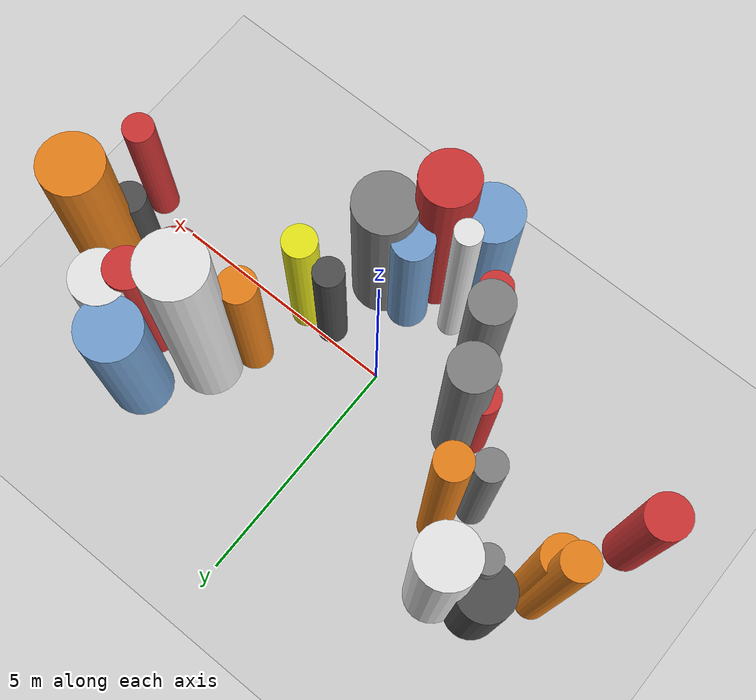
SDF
<?xml version='1.0'?>
<sdf version='1.6'>
  <world name='routeA_rl_v1__dense_recovery__rl_val__s_turn_multi_obstacle__000023'>
    <!-- Sun light -->
    <light name='sun' type='directional'>
      <cast_shadows>1</cast_shadows>
      <pose>0 0 10 0 0 0</pose>
      <diffuse>0.8 0.8 0.8 1</diffuse>
      <specular>0.2 0.2 0.2 1</specular>
      <attenuation>
        <range>1000</range>
        <constant>0.9</constant>
        <linear>0.01</linear>
        <quadratic>0.001</quadratic>
      </attenuation>
      <direction>-0.5 0.1 -0.9</direction>
    </light>

    <!-- Ground plane -->
    <model name='ground_plane'>
      <static>1</static>
      <link name='link'>
        <collision name='collision'>
          <geometry>
            <plane>
              <normal>0 0 1</normal>
              <size>100 100</size>
            </plane>
          </geometry>
          <surface>
            <contact>
              <collide_bitmask>65535</collide_bitmask>
              <ode/>
            </contact>
            <friction>
              <ode>
                <mu>100</mu>
                <mu2>50</mu2>
              </ode>
              <torsional><ode/></torsional>
            </friction>
            <bounce/>
          </surface>
          <max_contacts>10</max_contacts>
        </collision>
        <visual name='visual'>
          <cast_shadows>0</cast_shadows>
          <geometry>
            <plane>
              <normal>0 0 1</normal>
              <size>100 100</size>
            </plane>
          </geometry>
          <material>
            <script>
              <uri>file://media/materials/scripts/gazebo.material</uri>
              <n>Gazebo/Grey</n>
            </script>
          </material>
        </visual>
      </link>
    </model>

    <!-- Environment -->
    <magnetic_field>6e-06 2.3e-05 -4.2e-05</magnetic_field>
    <atmosphere type='adiabatic'/>
    <physics name='default_physics' default='0' type='ode'>
      <gravity>0 0 -9.8</gravity>
      <max_step_size>0.004</max_step_size>
      <real_time_factor>1</real_time_factor>
      <real_time_update_rate>250</real_time_update_rate>
    </physics>
    <scene>
      <ambient>0.4 0.4 0.4 1</ambient>
      <background>0.7 0.7 0.7 1</background>
      <shadows>1</shadows>
    </scene>
    <wind/>
    <spherical_coordinates>
      <surface_model>EARTH_WGS84</surface_model>
      <latitude_deg>0</latitude_deg>
      <longitude_deg>0</longitude_deg>
      <elevation>0</elevation>
      <heading_deg>0</heading_deg>
    </spherical_coordinates>

    <!-- ============ OBSTACLES (28) ============ -->
    <model name='s_turn_obs_0'>
      <static>1</static>
      <link name='link'>
        <visual name='visual'>
          <geometry>
            <cylinder>
              <radius>0.4320</radius>
              <length>3.6692</length>
            </cylinder>
          </geometry>
          <material>
            <script>
              <n>Gazebo/Red</n>
              <uri>file://media/materials/scripts/gazebo.material</uri>
            </script>
            <ambient>0.8 0.2 0.2 1</ambient>
          </material>
        </visual>
        <collision name='collision'>
          <geometry>
            <cylinder>
              <radius>0.4320</radius>
              <length>3.6692</length>
            </cylinder>
          </geometry>
          <max_contacts>10</max_contacts>
          <surface>
            <contact><ode/></contact>
            <bounce/>
            <friction>
              <ode><mu>1</mu><mu2>1</mu2></ode>
              <torsional><ode/></torsional>
            </friction>
          </surface>
        </collision>
      </link>
      <pose>-6.0000 -0.3251 1.8346 0 0 0.0000</pose>
    </model>

    <model name='s_turn_obs_1'>
      <static>1</static>
      <link name='link'>
        <visual name='visual'>
          <geometry>
            <cylinder>
              <radius>0.3243</radius>
              <length>5.7003</length>
            </cylinder>
          </geometry>
          <material>
            <script>
              <n>Gazebo/Orange</n>
              <uri>file://media/materials/scripts/gazebo.material</uri>
            </script>
            <ambient>0.9 0.5 0.1 1</ambient>
          </material>
        </visual>
        <collision name='collision'>
          <geometry>
            <cylinder>
              <radius>0.3243</radius>
              <length>5.7003</length>
            </cylinder>
          </geometry>
          <max_contacts>10</max_contacts>
          <surface>
            <contact><ode/></contact>
            <bounce/>
            <friction>
              <ode><mu>1</mu><mu2>1</mu2></ode>
              <torsional><ode/></torsional>
            </friction>
          </surface>
        </collision>
      </link>
      <pose>-5.2000 1.6608 2.8502 0 0 0.0000</pose>
    </model>

    <model name='s_turn_obs_2'>
      <static>1</static>
      <link name='link'>
        <visual name='visual'>
          <geometry>
            <cylinder>
              <radius>0.5444</radius>
              <length>3.3129</length>
            </cylinder>
          </geometry>
          <material>
            <script>
              <n>Gazebo/DarkGrey</n>
              <uri>file://media/materials/scripts/gazebo.material</uri>
            </script>
            <ambient>0.3 0.3 0.3 1</ambient>
          </material>
        </visual>
        <collision name='collision'>
          <geometry>
            <cylinder>
              <radius>0.5444</radius>
              <length>3.3129</length>
            </cylinder>
          </geometry>
          <max_contacts>10</max_contacts>
          <surface>
            <contact><ode/></contact>
            <bounce/>
            <friction>
              <ode><mu>1</mu><mu2>1</mu2></ode>
              <torsional><ode/></torsional>
            </friction>
          </surface>
        </collision>
      </link>
      <pose>-4.4000 2.5380 1.6565 0 0 0.0000</pose>
    </model>

    <model name='s_turn_obs_3'>
      <static>1</static>
      <link name='link'>
        <visual name='visual'>
          <geometry>
            <cylinder>
              <radius>0.5664</radius>
              <length>5.1203</length>
            </cylinder>
          </geometry>
          <material>
            <script>
              <n>Gazebo/White</n>
              <uri>file://media/materials/scripts/gazebo.material</uri>
            </script>
            <ambient>0.9 0.9 0.9 1</ambient>
          </material>
        </visual>
        <collision name='collision'>
          <geometry>
            <cylinder>
              <radius>0.5664</radius>
              <length>5.1203</length>
            </cylinder>
          </geometry>
          <max_contacts>10</max_contacts>
          <surface>
            <contact><ode/></contact>
            <bounce/>
            <friction>
              <ode><mu>1</mu><mu2>1</mu2></ode>
              <torsional><ode/></torsional>
            </friction>
          </surface>
        </collision>
      </link>
      <pose>-3.6000 2.7524 2.5602 0 0 0.0000</pose>
    </model>

    <model name='s_turn_obs_4'>
      <static>1</static>
      <link name='link'>
        <visual name='visual'>
          <geometry>
            <cylinder>
              <radius>0.3308</radius>
              <length>5.7313</length>
            </cylinder>
          </geometry>
          <material>
            <script>
              <n>Gazebo/Orange</n>
              <uri>file://media/materials/scripts/gazebo.material</uri>
            </script>
            <ambient>0.9 0.5 0.1 1</ambient>
          </material>
        </visual>
        <collision name='collision'>
          <geometry>
            <cylinder>
              <radius>0.3308</radius>
              <length>5.7313</length>
            </cylinder>
          </geometry>
          <max_contacts>10</max_contacts>
          <surface>
            <contact><ode/></contact>
            <bounce/>
            <friction>
              <ode><mu>1</mu><mu2>1</mu2></ode>
              <torsional><ode/></torsional>
            </friction>
          </surface>
        </collision>
      </link>
      <pose>-2.8000 1.6633 2.8657 0 0 0.0000</pose>
    </model>

    <model name='s_turn_obs_5'>
      <static>1</static>
      <link name='link'>
        <visual name='visual'>
          <geometry>
            <cylinder>
              <radius>0.4600</radius>
              <length>4.7182</length>
            </cylinder>
          </geometry>
          <material>
            <script>
              <n>Gazebo/Grey</n>
              <uri>file://media/materials/scripts/gazebo.material</uri>
            </script>
            <ambient>0.5 0.5 0.5 1</ambient>
          </material>
        </visual>
        <collision name='collision'>
          <geometry>
            <cylinder>
              <radius>0.4600</radius>
              <length>4.7182</length>
            </cylinder>
          </geometry>
          <max_contacts>10</max_contacts>
          <surface>
            <contact><ode/></contact>
            <bounce/>
            <friction>
              <ode><mu>1</mu><mu2>1</mu2></ode>
              <torsional><ode/></torsional>
            </friction>
          </surface>
        </collision>
      </link>
      <pose>-2.0000 -0.0164 2.3591 0 0 0.0000</pose>
    </model>

    <model name='s_turn_obs_6'>
      <static>1</static>
      <link name='link'>
        <visual name='visual'>
          <geometry>
            <cylinder>
              <radius>0.3325</radius>
              <length>3.1597</length>
            </cylinder>
          </geometry>
          <material>
            <script>
              <n>Gazebo/Red</n>
              <uri>file://media/materials/scripts/gazebo.material</uri>
            </script>
            <ambient>0.8 0.2 0.2 1</ambient>
          </material>
        </visual>
        <collision name='collision'>
          <geometry>
            <cylinder>
              <radius>0.3325</radius>
              <length>3.1597</length>
            </cylinder>
          </geometry>
          <max_contacts>10</max_contacts>
          <surface>
            <contact><ode/></contact>
            <bounce/>
            <friction>
              <ode><mu>1</mu><mu2>1</mu2></ode>
              <torsional><ode/></torsional>
            </friction>
          </surface>
        </collision>
      </link>
      <pose>-1.2000 -1.9509 1.5798 0 0 0.0000</pose>
    </model>

    <model name='s_turn_obs_7'>
      <static>1</static>
      <link name='link'>
        <visual name='visual'>
          <geometry>
            <cylinder>
              <radius>0.6041</radius>
              <length>3.9032</length>
            </cylinder>
          </geometry>
          <material>
            <script>
              <n>Gazebo/Blue</n>
              <uri>file://media/materials/scripts/gazebo.material</uri>
            </script>
            <ambient>0.447 0.624 0.812 1</ambient>
          </material>
        </visual>
        <collision name='collision'>
          <geometry>
            <cylinder>
              <radius>0.6041</radius>
              <length>3.9032</length>
            </cylinder>
          </geometry>
          <max_contacts>10</max_contacts>
          <surface>
            <contact><ode/></contact>
            <bounce/>
            <friction>
              <ode><mu>1</mu><mu2>1</mu2></ode>
              <torsional><ode/></torsional>
            </friction>
          </surface>
        </collision>
      </link>
      <pose>-0.4000 -2.7566 1.9516 0 0 0.0000</pose>
    </model>

    <model name='s_turn_obs_8'>
      <static>1</static>
      <link name='link'>
        <visual name='visual'>
          <geometry>
            <cylinder>
              <radius>0.5740</radius>
              <length>4.7303</length>
            </cylinder>
          </geometry>
          <material>
            <script>
              <n>Gazebo/Red</n>
              <uri>file://media/materials/scripts/gazebo.material</uri>
            </script>
            <ambient>0.8 0.2 0.2 1</ambient>
          </material>
        </visual>
        <collision name='collision'>
          <geometry>
            <cylinder>
              <radius>0.5740</radius>
              <length>4.7303</length>
            </cylinder>
          </geometry>
          <max_contacts>10</max_contacts>
          <surface>
            <contact><ode/></contact>
            <bounce/>
            <friction>
              <ode><mu>1</mu><mu2>1</mu2></ode>
              <torsional><ode/></torsional>
            </friction>
          </surface>
        </collision>
      </link>
      <pose>0.4000 -2.4563 2.3651 0 0 0.0000</pose>
    </model>

    <model name='s_turn_obs_9'>
      <static>1</static>
      <link name='link'>
        <visual name='visual'>
          <geometry>
            <cylinder>
              <radius>0.6360</radius>
              <length>3.9231</length>
            </cylinder>
          </geometry>
          <material>
            <script>
              <n>Gazebo/Grey</n>
              <uri>file://media/materials/scripts/gazebo.material</uri>
            </script>
            <ambient>0.5 0.5 0.5 1</ambient>
          </material>
        </visual>
        <collision name='collision'>
          <geometry>
            <cylinder>
              <radius>0.6360</radius>
              <length>3.9231</length>
            </cylinder>
          </geometry>
          <max_contacts>10</max_contacts>
          <surface>
            <contact><ode/></contact>
            <bounce/>
            <friction>
              <ode><mu>1</mu><mu2>1</mu2></ode>
              <torsional><ode/></torsional>
            </friction>
          </surface>
        </collision>
      </link>
      <pose>1.2000 -1.6860 1.9615 0 0 0.0000</pose>
    </model>

    <model name='s_turn_obs_10'>
      <static>1</static>
      <link name='link'>
        <visual name='visual'>
          <geometry>
            <cylinder>
              <radius>0.3414</radius>
              <length>3.6656</length>
            </cylinder>
          </geometry>
          <material>
            <script>
              <n>Gazebo/Yellow</n>
              <uri>file://media/materials/scripts/gazebo.material</uri>
            </script>
            <ambient>0.9 0.9 0.1 1</ambient>
          </material>
        </visual>
        <collision name='collision'>
          <geometry>
            <cylinder>
              <radius>0.3414</radius>
              <length>3.6656</length>
            </cylinder>
          </geometry>
          <max_contacts>10</max_contacts>
          <surface>
            <contact><ode/></contact>
            <bounce/>
            <friction>
              <ode><mu>1</mu><mu2>1</mu2></ode>
              <torsional><ode/></torsional>
            </friction>
          </surface>
        </collision>
      </link>
      <pose>2.0000 -0.2242 1.8328 0 0 0.0000</pose>
    </model>

    <model name='s_turn_obs_11'>
      <static>1</static>
      <link name='link'>
        <visual name='visual'>
          <geometry>
            <cylinder>
              <radius>0.6540</radius>
              <length>5.4257</length>
            </cylinder>
          </geometry>
          <material>
            <script>
              <n>Gazebo/White</n>
              <uri>file://media/materials/scripts/gazebo.material</uri>
            </script>
            <ambient>0.9 0.9 0.9 1</ambient>
          </material>
        </visual>
        <collision name='collision'>
          <geometry>
            <cylinder>
              <radius>0.6540</radius>
              <length>5.4257</length>
            </cylinder>
          </geometry>
          <max_contacts>10</max_contacts>
          <surface>
            <contact><ode/></contact>
            <bounce/>
            <friction>
              <ode><mu>1</mu><mu2>1</mu2></ode>
              <torsional><ode/></torsional>
            </friction>
          </surface>
        </collision>
      </link>
      <pose>2.8000 1.9266 2.7128 0 0 0.0000</pose>
    </model>

    <model name='s_turn_obs_12'>
      <static>1</static>
      <link name='link'>
        <visual name='visual'>
          <geometry>
            <cylinder>
              <radius>0.6463</radius>
              <length>3.4970</length>
            </cylinder>
          </geometry>
          <material>
            <script>
              <n>Gazebo/Blue</n>
              <uri>file://media/materials/scripts/gazebo.material</uri>
            </script>
            <ambient>0.447 0.624 0.812 1</ambient>
          </material>
        </visual>
        <collision name='collision'>
          <geometry>
            <cylinder>
              <radius>0.6463</radius>
              <length>3.4970</length>
            </cylinder>
          </geometry>
          <max_contacts>10</max_contacts>
          <surface>
            <contact><ode/></contact>
            <bounce/>
            <friction>
              <ode><mu>1</mu><mu2>1</mu2></ode>
              <torsional><ode/></torsional>
            </friction>
          </surface>
        </collision>
      </link>
      <pose>3.6000 3.1367 1.7485 0 0 0.0000</pose>
    </model>

    <model name='s_turn_obs_13'>
      <static>1</static>
      <link name='link'>
        <visual name='visual'>
          <geometry>
            <cylinder>
              <radius>0.5618</radius>
              <length>3.5137</length>
            </cylinder>
          </geometry>
          <material>
            <script>
              <n>Gazebo/White</n>
              <uri>file://media/materials/scripts/gazebo.material</uri>
            </script>
            <ambient>0.9 0.9 0.9 1</ambient>
          </material>
        </visual>
        <collision name='collision'>
          <geometry>
            <cylinder>
              <radius>0.5618</radius>
              <length>3.5137</length>
            </cylinder>
          </geometry>
          <max_contacts>10</max_contacts>
          <surface>
            <contact><ode/></contact>
            <bounce/>
            <friction>
              <ode><mu>1</mu><mu2>1</mu2></ode>
              <torsional><ode/></torsional>
            </friction>
          </surface>
        </collision>
      </link>
      <pose>4.4000 2.5349 1.7568 0 0 0.0000</pose>
    </model>

    <model name='s_turn_obs_14'>
      <static>1</static>
      <link name='link'>
        <visual name='visual'>
          <geometry>
            <cylinder>
              <radius>0.5991</radius>
              <length>5.6113</length>
            </cylinder>
          </geometry>
          <material>
            <script>
              <n>Gazebo/Orange</n>
              <uri>file://media/materials/scripts/gazebo.material</uri>
            </script>
            <ambient>0.9 0.5 0.1 1</ambient>
          </material>
        </visual>
        <collision name='collision'>
          <geometry>
            <cylinder>
              <radius>0.5991</radius>
              <length>5.6113</length>
            </cylinder>
          </geometry>
          <max_contacts>10</max_contacts>
          <surface>
            <contact><ode/></contact>
            <bounce/>
            <friction>
              <ode><mu>1</mu><mu2>1</mu2></ode>
              <torsional><ode/></torsional>
            </friction>
          </surface>
        </collision>
      </link>
      <pose>5.2000 1.6831 2.8057 0 0 0.0000</pose>
    </model>

    <model name='s_turn_obs_15'>
      <static>1</static>
      <link name='link'>
        <visual name='visual'>
          <geometry>
            <cylinder>
              <radius>0.3185</radius>
              <length>3.1950</length>
            </cylinder>
          </geometry>
          <material>
            <script>
              <n>Gazebo/Red</n>
              <uri>file://media/materials/scripts/gazebo.material</uri>
            </script>
            <ambient>0.8 0.2 0.2 1</ambient>
          </material>
        </visual>
        <collision name='collision'>
          <geometry>
            <cylinder>
              <radius>0.3185</radius>
              <length>3.1950</length>
            </cylinder>
          </geometry>
          <max_contacts>10</max_contacts>
          <surface>
            <contact><ode/></contact>
            <bounce/>
            <friction>
              <ode><mu>1</mu><mu2>1</mu2></ode>
              <torsional><ode/></torsional>
            </friction>
          </surface>
        </collision>
      </link>
      <pose>6.0000 -0.2072 1.5975 0 0 0.0000</pose>
    </model>

    <model name='s_turn_obs2_0'>
      <static>1</static>
      <link name='link'>
        <visual name='visual'>
          <geometry>
            <cylinder>
              <radius>0.3836</radius>
              <length>4.4403</length>
            </cylinder>
          </geometry>
          <material>
            <script>
              <n>Gazebo/Orange</n>
              <uri>file://media/materials/scripts/gazebo.material</uri>
            </script>
            <ambient>0.9 0.5 0.1 1</ambient>
          </material>
        </visual>
        <collision name='collision'>
          <geometry>
            <cylinder>
              <radius>0.3836</radius>
              <length>4.4403</length>
            </cylinder>
          </geometry>
          <max_contacts>10</max_contacts>
          <surface>
            <contact><ode/></contact>
            <bounce/>
            <friction>
              <ode><mu>1</mu><mu2>1</mu2></ode>
              <torsional><ode/></torsional>
            </friction>
          </surface>
        </collision>
      </link>
      <pose>-5.0000 1.4951 2.2202 0 0 0.0000</pose>
    </model>

    <model name='s_turn_obs2_1'>
      <static>1</static>
      <link name='link'>
        <visual name='visual'>
          <geometry>
            <cylinder>
              <radius>0.2750</radius>
              <length>3.7861</length>
            </cylinder>
          </geometry>
          <material>
            <script>
              <n>Gazebo/Grey</n>
              <uri>file://media/materials/scripts/gazebo.material</uri>
            </script>
            <ambient>0.5 0.5 0.5 1</ambient>
          </material>
        </visual>
        <collision name='collision'>
          <geometry>
            <cylinder>
              <radius>0.2750</radius>
              <length>3.7861</length>
            </cylinder>
          </geometry>
          <max_contacts>10</max_contacts>
          <surface>
            <contact><ode/></contact>
            <bounce/>
            <friction>
              <ode><mu>1</mu><mu2>1</mu2></ode>
              <torsional><ode/></torsional>
            </friction>
          </surface>
        </collision>
      </link>
      <pose>-4.0909 2.1670 1.8931 0 0 0.0000</pose>
    </model>

    <model name='s_turn_obs2_2'>
      <static>1</static>
      <link name='link'>
        <visual name='visual'>
          <geometry>
            <cylinder>
              <radius>0.3059</radius>
              <length>4.0292</length>
            </cylinder>
          </geometry>
          <material>
            <script>
              <n>Gazebo/Grey</n>
              <uri>file://media/materials/scripts/gazebo.material</uri>
            </script>
            <ambient>0.5 0.5 0.5 1</ambient>
          </material>
        </visual>
        <collision name='collision'>
          <geometry>
            <cylinder>
              <radius>0.3059</radius>
              <length>4.0292</length>
            </cylinder>
          </geometry>
          <max_contacts>10</max_contacts>
          <surface>
            <contact><ode/></contact>
            <bounce/>
            <friction>
              <ode><mu>1</mu><mu2>1</mu2></ode>
              <torsional><ode/></torsional>
            </friction>
          </surface>
        </collision>
      </link>
      <pose>-3.1818 0.9434 2.0146 0 0 0.0000</pose>
    </model>

    <model name='s_turn_obs2_3'>
      <static>1</static>
      <link name='link'>
        <visual name='visual'>
          <geometry>
            <cylinder>
              <radius>0.3370</radius>
              <length>3.0525</length>
            </cylinder>
          </geometry>
          <material>
            <script>
              <n>Gazebo/Red</n>
              <uri>file://media/materials/scripts/gazebo.material</uri>
            </script>
            <ambient>0.8 0.2 0.2 1</ambient>
          </material>
        </visual>
        <collision name='collision'>
          <geometry>
            <cylinder>
              <radius>0.3370</radius>
              <length>3.0525</length>
            </cylinder>
          </geometry>
          <max_contacts>10</max_contacts>
          <surface>
            <contact><ode/></contact>
            <bounce/>
            <friction>
              <ode><mu>1</mu><mu2>1</mu2></ode>
              <torsional><ode/></torsional>
            </friction>
          </surface>
        </collision>
      </link>
      <pose>-2.2727 -0.1902 1.5262 0 0 0.0000</pose>
    </model>

    <model name='s_turn_obs2_4'>
      <static>1</static>
      <link name='link'>
        <visual name='visual'>
          <geometry>
            <cylinder>
              <radius>0.4473</radius>
              <length>3.4985</length>
            </cylinder>
          </geometry>
          <material>
            <script>
              <n>Gazebo/Grey</n>
              <uri>file://media/materials/scripts/gazebo.material</uri>
            </script>
            <ambient>0.5 0.5 0.5 1</ambient>
          </material>
        </visual>
        <collision name='collision'>
          <geometry>
            <cylinder>
              <radius>0.4473</radius>
              <length>3.4985</length>
            </cylinder>
          </geometry>
          <max_contacts>10</max_contacts>
          <surface>
            <contact><ode/></contact>
            <bounce/>
            <friction>
              <ode><mu>1</mu><mu2>1</mu2></ode>
              <torsional><ode/></torsional>
            </friction>
          </surface>
        </collision>
      </link>
      <pose>-1.3636 -1.5486 1.7492 0 0 0.0000</pose>
    </model>

    <model name='s_turn_obs2_5'>
      <static>1</static>
      <link name='link'>
        <visual name='visual'>
          <geometry>
            <cylinder>
              <radius>0.2636</radius>
              <length>4.6873</length>
            </cylinder>
          </geometry>
          <material>
            <script>
              <n>Gazebo/White</n>
              <uri>file://media/materials/scripts/gazebo.material</uri>
            </script>
            <ambient>0.9 0.9 0.9 1</ambient>
          </material>
        </visual>
        <collision name='collision'>
          <geometry>
            <cylinder>
              <radius>0.2636</radius>
              <length>4.6873</length>
            </cylinder>
          </geometry>
          <max_contacts>10</max_contacts>
          <surface>
            <contact><ode/></contact>
            <bounce/>
            <friction>
              <ode><mu>1</mu><mu2>1</mu2></ode>
              <torsional><ode/></torsional>
            </friction>
          </surface>
        </collision>
      </link>
      <pose>-0.4545 -1.8742 2.3437 0 0 0.0000</pose>
    </model>

    <model name='s_turn_obs2_6'>
      <static>1</static>
      <link name='link'>
        <visual name='visual'>
          <geometry>
            <cylinder>
              <radius>0.4198</radius>
              <length>3.5529</length>
            </cylinder>
          </geometry>
          <material>
            <script>
              <n>Gazebo/Blue</n>
              <uri>file://media/materials/scripts/gazebo.material</uri>
            </script>
            <ambient>0.447 0.624 0.812 1</ambient>
          </material>
        </visual>
        <collision name='collision'>
          <geometry>
            <cylinder>
              <radius>0.4198</radius>
              <length>3.5529</length>
            </cylinder>
          </geometry>
          <max_contacts>10</max_contacts>
          <surface>
            <contact><ode/></contact>
            <bounce/>
            <friction>
              <ode><mu>1</mu><mu2>1</mu2></ode>
              <torsional><ode/></torsional>
            </friction>
          </surface>
        </collision>
      </link>
      <pose>0.4545 -1.5715 1.7764 0 0 0.0000</pose>
    </model>

    <model name='s_turn_obs2_7'>
      <static>1</static>
      <link name='link'>
        <visual name='visual'>
          <geometry>
            <cylinder>
              <radius>0.3112</radius>
              <length>3.1357</length>
            </cylinder>
          </geometry>
          <material>
            <script>
              <n>Gazebo/DarkGrey</n>
              <uri>file://media/materials/scripts/gazebo.material</uri>
            </script>
            <ambient>0.3 0.3 0.3 1</ambient>
          </material>
        </visual>
        <collision name='collision'>
          <geometry>
            <cylinder>
              <radius>0.3112</radius>
              <length>3.1357</length>
            </cylinder>
          </geometry>
          <max_contacts>10</max_contacts>
          <surface>
            <contact><ode/></contact>
            <bounce/>
            <friction>
              <ode><mu>1</mu><mu2>1</mu2></ode>
              <torsional><ode/></torsional>
            </friction>
          </surface>
        </collision>
      </link>
      <pose>1.3636 -0.2477 1.5679 0 0 0.0000</pose>
    </model>

    <model name='s_turn_obs2_8'>
      <static>1</static>
      <link name='link'>
        <visual name='visual'>
          <geometry>
            <cylinder>
              <radius>0.3729</radius>
              <length>3.8058</length>
            </cylinder>
          </geometry>
          <material>
            <script>
              <n>Gazebo/Orange</n>
              <uri>file://media/materials/scripts/gazebo.material</uri>
            </script>
            <ambient>0.9 0.5 0.1 1</ambient>
          </material>
        </visual>
        <collision name='collision'>
          <geometry>
            <cylinder>
              <radius>0.3729</radius>
              <length>3.8058</length>
            </cylinder>
          </geometry>
          <max_contacts>10</max_contacts>
          <surface>
            <contact><ode/></contact>
            <bounce/>
            <friction>
              <ode><mu>1</mu><mu2>1</mu2></ode>
              <torsional><ode/></torsional>
            </friction>
          </surface>
        </collision>
      </link>
      <pose>2.2727 1.1467 1.9029 0 0 0.0000</pose>
    </model>

    <model name='s_turn_obs2_9'>
      <static>1</static>
      <link name='link'>
        <visual name='visual'>
          <geometry>
            <cylinder>
              <radius>0.4661</radius>
              <length>4.7192</length>
            </cylinder>
          </geometry>
          <material>
            <script>
              <n>Gazebo/Red</n>
              <uri>file://media/materials/scripts/gazebo.material</uri>
            </script>
            <ambient>0.8 0.2 0.2 1</ambient>
          </material>
        </visual>
        <collision name='collision'>
          <geometry>
            <cylinder>
              <radius>0.4661</radius>
              <length>4.7192</length>
            </cylinder>
          </geometry>
          <max_contacts>10</max_contacts>
          <surface>
            <contact><ode/></contact>
            <bounce/>
            <friction>
              <ode><mu>1</mu><mu2>1</mu2></ode>
              <torsional><ode/></torsional>
            </friction>
          </surface>
        </collision>
      </link>
      <pose>3.1818 1.5549 2.3596 0 0 0.0000</pose>
    </model>

    <model name='s_turn_obs2_10'>
      <static>1</static>
      <link name='link'>
        <visual name='visual'>
          <geometry>
            <cylinder>
              <radius>0.4336</radius>
              <length>3.6172</length>
            </cylinder>
          </geometry>
          <material>
            <script>
              <n>Gazebo/Red</n>
              <uri>file://media/materials/scripts/gazebo.material</uri>
            </script>
            <ambient>0.8 0.2 0.2 1</ambient>
          </material>
        </visual>
        <collision name='collision'>
          <geometry>
            <cylinder>
              <radius>0.4336</radius>
              <length>3.6172</length>
            </cylinder>
          </geometry>
          <max_contacts>10</max_contacts>
          <surface>
            <contact><ode/></contact>
            <bounce/>
            <friction>
              <ode><mu>1</mu><mu2>1</mu2></ode>
              <torsional><ode/></torsional>
            </friction>
          </surface>
        </collision>
      </link>
      <pose>4.0909 2.1169 1.8086 0 0 0.0000</pose>
    </model>

    <model name='s_turn_obs2_11'>
      <static>1</static>
      <link name='link'>
        <visual name='visual'>
          <geometry>
            <cylinder>
              <radius>0.3266</radius>
              <length>3.5480</length>
            </cylinder>
          </geometry>
          <material>
            <script>
              <n>Gazebo/DarkGrey</n>
              <uri>file://media/materials/scripts/gazebo.material</uri>
            </script>
            <ambient>0.3 0.3 0.3 1</ambient>
          </material>
        </visual>
        <collision name='collision'>
          <geometry>
            <cylinder>
              <radius>0.3266</radius>
              <length>3.5480</length>
            </cylinder>
          </geometry>
          <max_contacts>10</max_contacts>
          <surface>
            <contact><ode/></contact>
            <bounce/>
            <friction>
              <ode><mu>1</mu><mu2>1</mu2></ode>
              <torsional><ode/></torsional>
            </friction>
          </surface>
        </collision>
      </link>
      <pose>5.0000 1.0426 1.7740 0 0 0.0000</pose>
    </model>

    <!-- GUI camera -->
    <gui fullscreen='0'>
      <camera name='user_camera'>
        <pose>-15 0 18 0 0.85 0.15</pose>
        <view_controller>orbit</view_controller>
        <projection_type>perspective</projection_type>
      </camera>
    </gui>
  </world>
</sdf>
